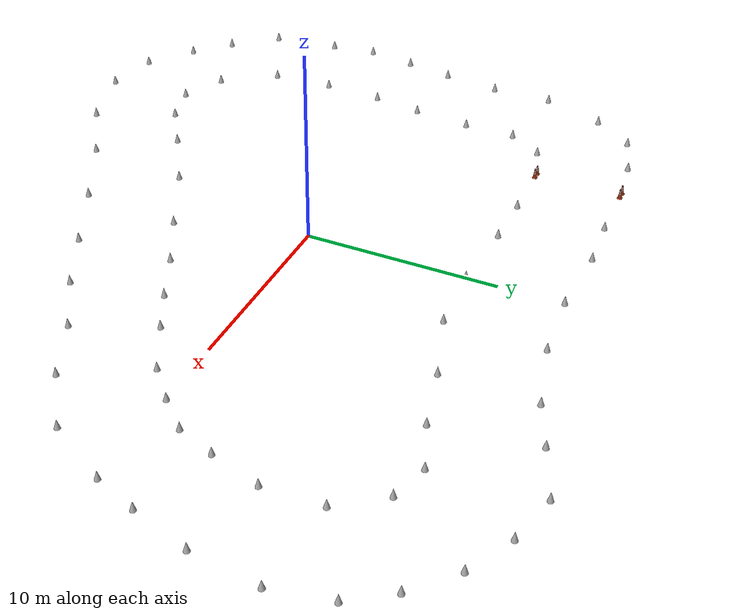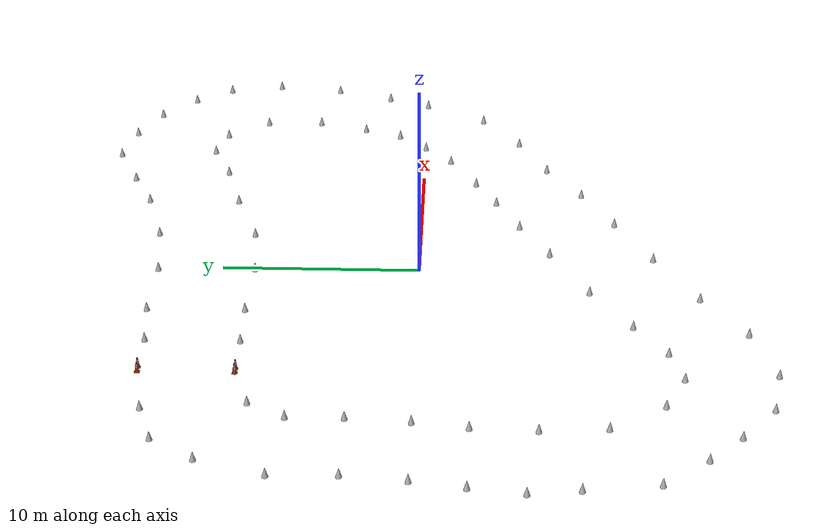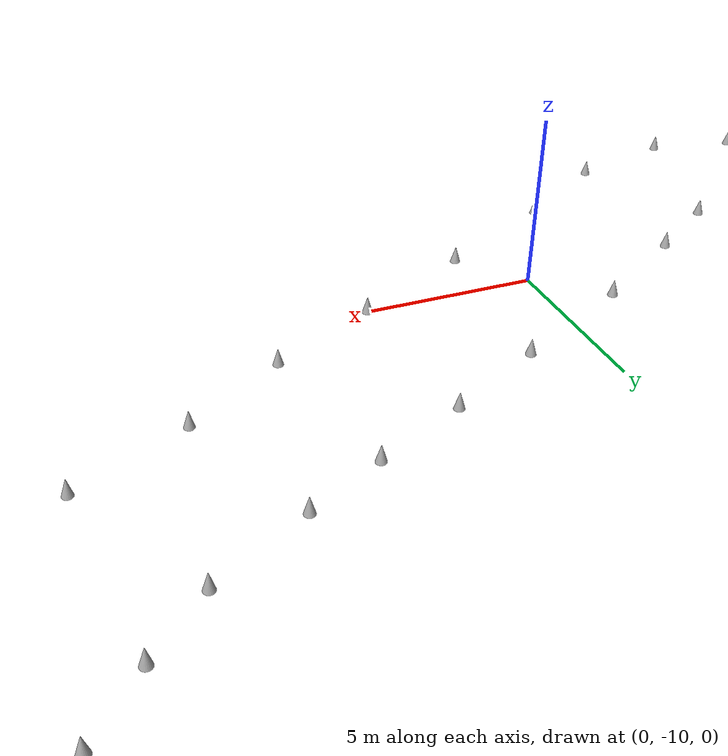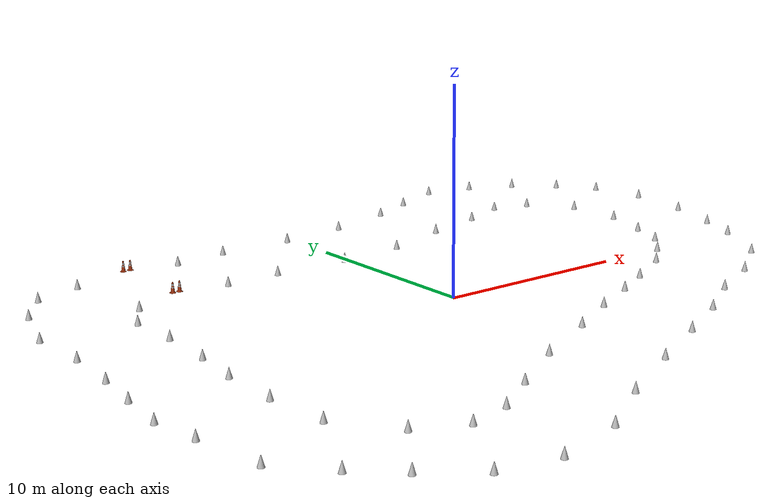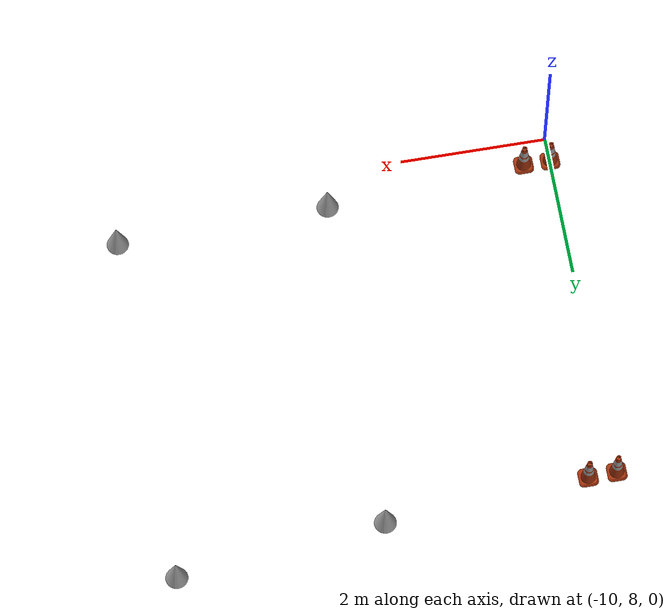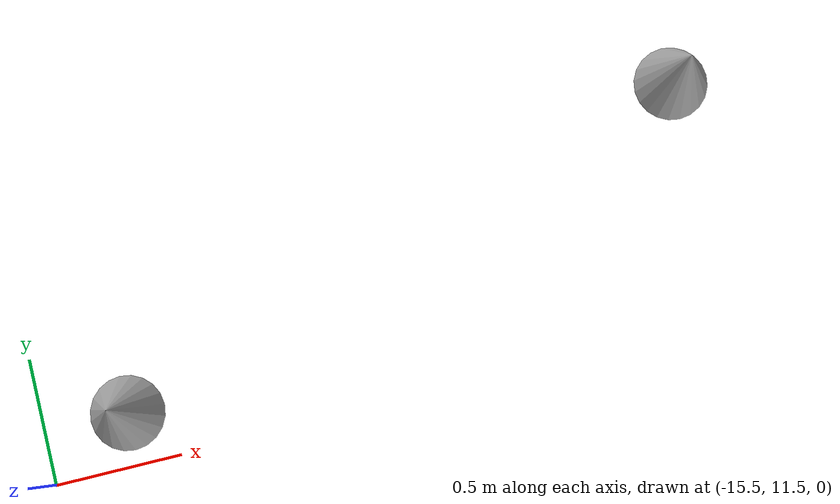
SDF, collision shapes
<?xml version='1.0'?>
<sdf version='1.10'>
  <model name='track'>

    <include>
      <pose>-16.7219 9.56934 0.15 0 0 0</pose>
      <uri>model://blue_cone</uri>
      <name>blue_cone_0</name>

    </include>

    <include>
      <pose>-12.7553 12.49 0.15 0 0 0</pose>
      <uri>model://blue_cone</uri>
      <name>blue_cone_1</name>

    </include>

    <include>
      <pose>-6.89062 13.0757 0.15 0 0 0</pose>
      <uri>model://blue_cone</uri>
      <name>blue_cone_2</name>

    </include>

    <include>
      <pose>9.62956 15.8379 0.15 0 0 0</pose>
      <uri>model://blue_cone</uri>
      <name>blue_cone_3</name>

    </include>

    <include>
      <pose>12.492 17.0404 0.15 0 0 0</pose>
      <uri>model://blue_cone</uri>
      <name>blue_cone_4</name>

    </include>

    <include>
      <pose>15.1389 16.5025 0.15 0 0 0</pose>
      <uri>model://blue_cone</uri>
      <name>blue_cone_5</name>

    </include>

    <include>
      <pose>19.5034 13.6361 0.15 0 0 0</pose>
      <uri>model://blue_cone</uri>
      <name>blue_cone_6</name>

    </include>

    <include>
      <pose>20.8922 11.7012 0.15 0 0 0</pose>
      <uri>model://blue_cone</uri>
      <name>blue_cone_7</name>

    </include>

    <include>
      <pose>17.5221 15.3812 0.15 0 0 0</pose>
      <uri>model://blue_cone</uri>
      <name>blue_cone_8</name>

    </include>

    <include>
      <pose>21.4761 8.79574 0.15 0 0 0</pose>
      <uri>model://blue_cone</uri>
      <name>blue_cone_9</name>

    </include>

    <include>
      <pose>20.9992 5.27662 0.15 0 0 0</pose>
      <uri>model://blue_cone</uri>
      <name>blue_cone_10</name>

    </include>

    <include>
      <pose>19.9925 2.24053 0.15 0 0 0</pose>
      <uri>model://blue_cone</uri>
      <name>blue_cone_11</name>

    </include>

    <include>
      <pose>19.0983 0.0 0.15 0 0 0</pose>
      <uri>model://blue_cone</uri>
      <name>blue_cone_12</name>

    </include>

    <include>
      <pose>17.1824 -3.23994 0.15 0 0 0</pose>
      <uri>model://blue_cone</uri>
      <name>blue_cone_13</name>

    </include>

    <include>
      <pose>11.114 -6.74408 0.15 0 0 0</pose>
      <uri>model://blue_cone</uri>
      <name>blue_cone_14</name>

    </include>

    <include>
      <pose>-4.06552 13.3637 0.15 0 0 0</pose>
      <uri>model://blue_cone</uri>
      <name>blue_cone_15</name>

    </include>

    <include>
      <pose>14.2831 -5.26437 0.15 0 0 0</pose>
      <uri>model://blue_cone</uri>
      <name>blue_cone_16</name>

    </include>

    <include>
      <pose>8.25363 -8.53889 0.15 0 0 0</pose>
      <uri>model://blue_cone</uri>
      <name>blue_cone_17</name>

    </include>

    <include>
      <pose>5.06185 -10.1551 0.15 0 0 0</pose>
      <uri>model://blue_cone</uri>
      <name>blue_cone_18</name>

    </include>

    <include>
      <pose>1.42086 -11.9634 0.15 0 0 0</pose>
      <uri>model://blue_cone</uri>
      <name>blue_cone_19</name>

    </include>

    <include>
      <pose>-2.4975 -14.0305 0.15 0 0 0</pose>
      <uri>model://blue_cone</uri>
      <name>blue_cone_20</name>

    </include>

    <include>
      <pose>-5.74864 -16.1217 0.15 0 0 0</pose>
      <uri>model://blue_cone</uri>
      <name>blue_cone_21</name>

    </include>

    <include>
      <pose>-9.34841 -17.1551 0.15 0 0 0</pose>
      <uri>model://blue_cone</uri>
      <name>blue_cone_22</name>

    </include>

    <include>
      <pose>-12.2114 -16.6459 0.15 0 0 0</pose>
      <uri>model://blue_cone</uri>
      <name>blue_cone_23</name>

    </include>

    <include>
      <pose>-14.4625 -14.9249 0.15 0 0 0</pose>
      <uri>model://blue_cone</uri>
      <name>blue_cone_24</name>

    </include>

    <include>
      <pose>-16.2427 -13.276 0.15 0 0 0</pose>
      <uri>model://blue_cone</uri>
      <name>blue_cone_25</name>

    </include>

    <include>
      <pose>-0.131239 13.3125 0.15 0 0 0</pose>
      <uri>model://blue_cone</uri>
      <name>blue_cone_26</name>

    </include>

    <include>
      <pose>-18.1431 -11.086 0.15 0 0 0</pose>
      <uri>model://blue_cone</uri>
      <name>blue_cone_27</name>

    </include>

    <include>
      <pose>-18.6174 -7.56085 0.15 0 0 0</pose>
      <uri>model://blue_cone</uri>
      <name>blue_cone_28</name>

    </include>

    <include>
      <pose>-18.9382 -5.15509 0.15 0 0 0</pose>
      <uri>model://blue_cone</uri>
      <name>blue_cone_29</name>

    </include>

    <include>
      <pose>-18.5558 -2.56017 0.15 0 0 0</pose>
      <uri>model://blue_cone</uri>
      <name>blue_cone_30</name>

    </include>

    <include>
      <pose>-18.1206 0.0 0.15 0 0 0</pose>
      <uri>model://blue_cone</uri>
      <name>blue_cone_31</name>

    </include>

    <include>
      <pose>-17.7841 3.04246 0.15 0 0 0</pose>
      <uri>model://blue_cone</uri>
      <name>blue_cone_32</name>

    </include>

    <include>
      <pose>-17.8432 6.27091 0.15 0 0 0</pose>
      <uri>model://blue_cone</uri>
      <name>blue_cone_33</name>

    </include>

    <include>
      <pose>-15.1864 11.7137 0.15 0 0 0</pose>
      <uri>model://blue_cone</uri>
      <name>blue_cone_34</name>

    </include>

    <include>
      <pose>3.50416 13.7245 0.15 0 0 0</pose>
      <uri>model://blue_cone</uri>
      <name>blue_cone_35</name>

    </include>

    <include>
      <pose>7.13676 14.727 0.15 0 0 0</pose>
      <uri>model://blue_cone</uri>
      <name>blue_cone_36</name>

    </include>

    <include>
      <pose>-12.2184 7.60803 0.15 0 0 0</pose>
      <uri>model://yellow_cone</uri>
      <name>yellow_cone_37</name>

    </include>

    <include>
      <pose>7.14787 9.92656 0.15 0 0 0</pose>
      <uri>model://yellow_cone</uri>
      <name>yellow_cone_38</name>

    </include>

    <include>
      <pose>10.4312 10.799 0.15 0 0 0</pose>
      <uri>model://yellow_cone</uri>
      <name>yellow_cone_39</name>

    </include>

    <include>
      <pose>12.9655 11.8014 0.15 0 0 0</pose>
      <uri>model://yellow_cone</uri>
      <name>yellow_cone_40</name>

    </include>

    <include>
      <pose>14.9652 11.2833 0.15 0 0 0</pose>
      <uri>model://yellow_cone</uri>
      <name>yellow_cone_41</name>

    </include>

    <include>
      <pose>16.6054 9.12035 0.15 0 0 0</pose>
      <uri>model://yellow_cone</uri>
      <name>yellow_cone_42</name>

    </include>

    <include>
      <pose>-6.90998 8.44454 0.15 0 0 0</pose>
      <uri>model://yellow_cone</uri>
      <name>yellow_cone_43</name>

    </include>

    <include>
      <pose>16.7063 6.10772 0.15 0 0 0</pose>
      <uri>model://yellow_cone</uri>
      <name>yellow_cone_44</name>

    </include>

    <include>
      <pose>15.876 3.47906 0.15 0 0 0</pose>
      <uri>model://yellow_cone</uri>
      <name>yellow_cone_45</name>

    </include>

    <include>
      <pose>15.106 1.5027 0.15 0 0 0</pose>
      <uri>model://yellow_cone</uri>
      <name>yellow_cone_46</name>

    </include>

    <include>
      <pose>13.6765 0.0 0.15 0 0 0</pose>
      <uri>model://yellow_cone</uri>
      <name>yellow_cone_47</name>

    </include>

    <include>
      <pose>9.41953 -2.84739 0.15 0 0 0</pose>
      <uri>model://yellow_cone</uri>
      <name>yellow_cone_48</name>

    </include>

    <include>
      <pose>12.0732 -1.43122 0.15 0 0 0</pose>
      <uri>model://yellow_cone</uri>
      <name>yellow_cone_49</name>

    </include>

    <include>
      <pose>7.26282 -3.9408 0.15 0 0 0</pose>
      <uri>model://yellow_cone</uri>
      <name>yellow_cone_50</name>

    </include>

    <include>
      <pose>4.65159 -5.15509 0.15 0 0 0</pose>
      <uri>model://yellow_cone</uri>
      <name>yellow_cone_51</name>

    </include>

    <include>
      <pose>1.78774 -6.66723 0.15 0 0 0</pose>
      <uri>model://yellow_cone</uri>
      <name>yellow_cone_52</name>

    </include>

    <include>
      <pose>-1.97969 -8.56329 0.15 0 0 0</pose>
      <uri>model://yellow_cone</uri>
      <name>yellow_cone_53</name>

    </include>

    <include>
      <pose>-4.01695 8.50322 0.15 0 0 0</pose>
      <uri>model://yellow_cone</uri>
      <name>yellow_cone_54</name>

    </include>

    <include>
      <pose>-5.18123 -10.5555 0.15 0 0 0</pose>
      <uri>model://yellow_cone</uri>
      <name>yellow_cone_55</name>

    </include>

    <include>
      <pose>-7.57043 -12.1125 0.15 0 0 0</pose>
      <uri>model://yellow_cone</uri>
      <name>yellow_cone_56</name>

    </include>

    <include>
      <pose>-9.76388 -12.7081 0.15 0 0 0</pose>
      <uri>model://yellow_cone</uri>
      <name>yellow_cone_57</name>

    </include>

    <include>
      <pose>-12.0338 -11.6718 0.15 0 0 0</pose>
      <uri>model://yellow_cone</uri>
      <name>yellow_cone_58</name>

    </include>

    <include>
      <pose>-13.9298 -8.98291 0.15 0 0 0</pose>
      <uri>model://yellow_cone</uri>
      <name>yellow_cone_59</name>

    </include>

    <include>
      <pose>-14.1575 -5.77329 0.15 0 0 0</pose>
      <uri>model://yellow_cone</uri>
      <name>yellow_cone_60</name>

    </include>

    <include>
      <pose>-14.0043 -2.62998 0.15 0 0 0</pose>
      <uri>model://yellow_cone</uri>
      <name>yellow_cone_61</name>

    </include>

    <include>
      <pose>-13.6087 0.0 0.15 0 0 0</pose>
      <uri>model://yellow_cone</uri>
      <name>yellow_cone_62</name>

    </include>

    <include>
      <pose>-13.3478 3.05712 0.15 0 0 0</pose>
      <uri>model://yellow_cone</uri>
      <name>yellow_cone_63</name>

    </include>

    <include>
      <pose>-0.059759 8.37591 0.15 0 0 0</pose>
      <uri>model://yellow_cone</uri>
      <name>yellow_cone_64</name>

    </include>

    <include>
      <pose>-13.3455 5.78808 0.15 0 0 0</pose>
      <uri>model://yellow_cone</uri>
      <name>yellow_cone_65</name>

    </include>

    <include>
      <pose>3.5151 8.6968 0.15 0 0 0</pose>
      <uri>model://yellow_cone</uri>
      <name>yellow_cone_66</name>

    </include>

    <include>
      <pose>-9.61314 13.0 0.15 0 0 0</pose>
      <uri>model://big_cone</uri>
      <name>big_cone_67</name>

    </include>

    <include>
      <pose>-9.99934 12.989 0.15 0 0 0</pose>
      <uri>model://big_cone</uri>
      <name>big_cone_68</name>

    </include>

    <include>
      <pose>-9.62148 8.39323 0.15 0 0 0</pose>
      <uri>model://big_cone</uri>
      <name>big_cone_69</name>

    </include>

    <include>
      <pose>-9.98667 8.39348 0.15 0 0 0</pose>
      <uri>model://big_cone</uri>
      <name>big_cone_70</name>

    </include>

    <static>true</static>
    <allow_auto_disable>true</allow_auto_disable>
  </model>
</sdf>

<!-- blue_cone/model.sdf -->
<sdf version="1.10">
  <model name="blue_cone">
    <link name="link">
      <pose>0 0 0 0 0 0</pose>
      <inertial>
        <mass>0.45</mass>
        <inertia>
          <ixx>0.0016</ixx>
          <ixy>0</ixy>
          <ixz>0</ixz>
          <iyy>0.0016</iyy>
          <iyz>0</iyz>
          <izz>0.0010</izz>
        </inertia>
      </inertial>
      <visual name="visual">
        <geometry>
          <mesh>
            <uri>model://cmh_gazebo/meshes/cone_blue.dae</uri>
          </mesh>
        </geometry>
        <cast_shadows>false</cast_shadows>
      </visual>
      <collision name="collision">
        <max_contacts>3</max_contacts>
        <geometry>
            <cone><radius>0.15</radius> <length>0.5</length>  </cone>
        </geometry>
      </collision>
    </link>
  </model>
</sdf>

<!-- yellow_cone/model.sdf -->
<sdf version='1.10'>
  <model name='yellow_cone'>
    <link name='link'>
      <pose>0 0 0 0 0 0</pose>
      <inertial>
        <mass>0.45</mass>
        <inertia>
          <ixx>0.0016</ixx>
          <ixy>0</ixy>
          <ixz>0</ixz>
          <iyy>0.0016</iyy>
          <iyz>0</iyz>
          <izz>0.0010</izz>
        </inertia>
      </inertial>
      <visual name='visual'>
        <geometry>
          <mesh>
            <uri>model://cmh_gazebo/meshes/cone_yellow.dae</uri>
          </mesh>
        </geometry>
        <cast_shadows>false</cast_shadows>
      </visual>
      <collision name='collision'>
        <max_contacts>3</max_contacts>
        <geometry>
            <cone><radius>0.15</radius> <length>0.5</length>  </cone>
            <!--TODO needs to be adjusted -->
        </geometry>
      </collision>
    </link>
  </model>
</sdf>

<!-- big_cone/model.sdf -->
<sdf version='1.10'>
  <model name='big_cone'>
    <link name='link'>
      <pose>0 0 0 0 0 0</pose>
      <inertial>
        <mass>1.05</mass>
        <inertia>
          <ixx>0.0016</ixx>
          <ixy>0</ixy>
          <ixz>0</ixz>
          <iyy>0.0016</iyy>
          <iyz>0</iyz>
          <izz>0.0010</izz>
        </inertia>
      </inertial>
      <visual name='visual'>
        <geometry>
          <mesh>
            <uri>model://cmh_gazebo/meshes/cone_big.dae</uri>
          </mesh>
        </geometry>
        <cast_shadows>true</cast_shadows>
      </visual>
      <collision name='collision'>
        <max_contacts>3</max_contacts>
        <geometry>
          <mesh>
            <uri>model://cmh_gazebo/meshes/cone_big.dae</uri>
          </mesh>
        </geometry>
      </collision>
    </link>
  </model>
</sdf>
